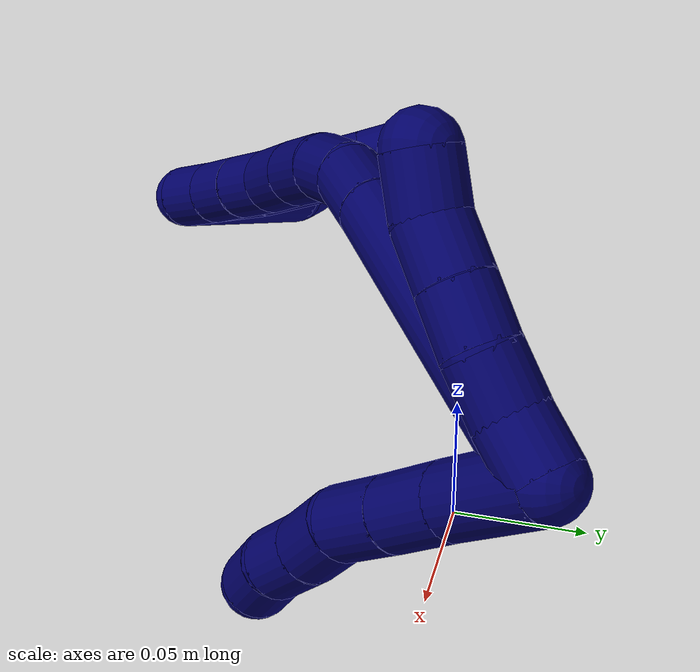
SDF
<sdf version="1.7">
 <world name="default">
  <model name="7">
   <static>0</static>
   <link name="7">
    <collision name="collision-cylinder-e_1_2_8">
     <pose>0.004969 -0.003011 0.018604 0.160482 0.257811 0.020846</pose>
     <geometry><cylinder><radius>0.0125</radius><length>0.03898</length></cylinder></geometry>
     <surface>
      <friction><ode><mu>1.16</mu><mu2>1.16</mu2><slip1>0</slip1><slip2>0</slip2></ode></friction>
      <contact><ode><kp>1e+06</kp><kd>1</kd><max_vel>0</max_vel><min_depth>0.001</min_depth></ode></contact>
     </surface>
    </collision>
    <visual name="visual-cylinder-e_1_2_8">
     <pose>0.004969 -0.003011 0.018604 0.160482 0.257811 0.020846</pose>
     <geometry><cylinder><radius>0.0125</radius><length>0.03898</length></cylinder></geometry>
     <material><ambient>0.003922 0 0.403922 1</ambient></material>
    </visual>
    <collision name="collision-cylinder-e_2_8_9">
     <pose>0.013558 -0.007139 0.04888 0.095342 0.299377 0.01439</pose>
     <geometry><cylinder><radius>0.0125</radius><length>0.024544</length></cylinder></geometry>
     <surface>
      <friction><ode><mu>1.16</mu><mu2>1.16</mu2><slip1>0</slip1><slip2>0</slip2></ode></friction>
      <contact><ode><kp>1e+06</kp><kd>1</kd><max_vel>0</max_vel><min_depth>0.001</min_depth></ode></contact>
     </surface>
    </collision>
    <visual name="visual-cylinder-e_2_8_9">
     <pose>0.013558 -0.007139 0.04888 0.095342 0.299377 0.01439</pose>
     <geometry><cylinder><radius>0.0125</radius><length>0.024544</length></cylinder></geometry>
     <material><ambient>0.003922 0 0.403922 1</ambient></material>
    </visual>
    <collision name="collision-cylinder-e_3_9_10">
     <pose>0.02044 -0.009566 0.07215 0.112563 0.272632 0.015456</pose>
     <geometry><cylinder><radius>0.0125</radius><length>0.024237</length></cylinder></geometry>
     <surface>
      <friction><ode><mu>1.16</mu><mu2>1.16</mu2><slip1>0</slip1><slip2>0</slip2></ode></friction>
      <contact><ode><kp>1e+06</kp><kd>1</kd><max_vel>0</max_vel><min_depth>0.001</min_depth></ode></contact>
     </surface>
    </collision>
    <visual name="visual-cylinder-e_3_9_10">
     <pose>0.02044 -0.009566 0.07215 0.112563 0.272632 0.015456</pose>
     <geometry><cylinder><radius>0.0125</radius><length>0.024237</length></cylinder></geometry>
     <material><ambient>0.003922 0 0.403922 1</ambient></material>
    </visual>
    <collision name="collision-cylinder-e_4_10_11">
     <pose>0.028753 -0.013871 0.092891 0.316395 0.483333 0.078603</pose>
     <geometry><cylinder><radius>0.0125</radius><length>0.021732</length></cylinder></geometry>
     <surface>
      <friction><ode><mu>1.16</mu><mu2>1.16</mu2><slip1>0</slip1><slip2>0</slip2></ode></friction>
      <contact><ode><kp>1e+06</kp><kd>1</kd><max_vel>0</max_vel><min_depth>0.001</min_depth></ode></contact>
     </surface>
    </collision>
    <visual name="visual-cylinder-e_4_10_11">
     <pose>0.028753 -0.013871 0.092891 0.316395 0.483333 0.078603</pose>
     <geometry><cylinder><radius>0.0125</radius><length>0.021732</length></cylinder></geometry>
     <material><ambient>0.003922 0 0.403922 1</ambient></material>
    </visual>
    <collision name="collision-cylinder-e_5_11_12">
     <pose>0.037897 -0.01879 0.111024 0.210983 0.418961 0.045014</pose>
     <geometry><cylinder><radius>0.0125</radius><length>0.020127</length></cylinder></geometry>
     <surface>
      <friction><ode><mu>1.16</mu><mu2>1.16</mu2><slip1>0</slip1><slip2>0</slip2></ode></friction>
      <contact><ode><kp>1e+06</kp><kd>1</kd><max_vel>0</max_vel><min_depth>0.001</min_depth></ode></contact>
     </surface>
    </collision>
    <visual name="visual-cylinder-e_5_11_12">
     <pose>0.037897 -0.01879 0.111024 0.210983 0.418961 0.045014</pose>
     <geometry><cylinder><radius>0.0125</radius><length>0.020127</length></cylinder></geometry>
     <material><ambient>0.003922 0 0.403922 1</ambient></material>
    </visual>
    <collision name="collision-cylinder-e_6_12_6">
     <pose>0.046546 -0.024834 0.128145 0.468856 0.463415 0.112577</pose>
     <geometry><cylinder><radius>0.0125</radius><length>0.02038</length></cylinder></geometry>
     <surface>
      <friction><ode><mu>1.16</mu><mu2>1.16</mu2><slip1>0</slip1><slip2>0</slip2></ode></friction>
      <contact><ode><kp>1e+06</kp><kd>1</kd><max_vel>0</max_vel><min_depth>0.001</min_depth></ode></contact>
     </surface>
    </collision>
    <visual name="visual-cylinder-e_6_12_6">
     <pose>0.046546 -0.024834 0.128145 0.468856 0.463415 0.112577</pose>
     <geometry><cylinder><radius>0.0125</radius><length>0.02038</length></cylinder></geometry>
     <material><ambient>0.003922 0 0.403922 1</ambient></material>
    </visual>
    <collision name="collision-cylinder-e_1_2_13">
     <pose>-0.007829 0.002141 0.005841 -0.351278 -0.899327 0.170889</pose>
     <geometry><cylinder><radius>0.0125</radius><length>0.02</length></cylinder></geometry>
     <surface>
      <friction><ode><mu>1.16</mu><mu2>1.16</mu2><slip1>0</slip1><slip2>0</slip2></ode></friction>
      <contact><ode><kp>1e+06</kp><kd>1</kd><max_vel>0</max_vel><min_depth>0.001</min_depth></ode></contact>
     </surface>
    </collision>
    <visual name="visual-cylinder-e_1_2_13">
     <pose>-0.007829 0.002141 0.005841 -0.351278 -0.899327 0.170889</pose>
     <geometry><cylinder><radius>0.0125</radius><length>0.02</length></cylinder></geometry>
     <material><ambient>0.003922 0 0.403922 1</ambient></material>
    </visual>
    <collision name="collision-cylinder-e_2_13_14">
     <pose>-0.02403 0.008042 0.015654 -0.758245 -0.992101 0.424711</pose>
     <geometry><cylinder><radius>0.0125</radius><length>0.02</length></cylinder></geometry>
     <surface>
      <friction><ode><mu>1.16</mu><mu2>1.16</mu2><slip1>0</slip1><slip2>0</slip2></ode></friction>
      <contact><ode><kp>1e+06</kp><kd>1</kd><max_vel>0</max_vel><min_depth>0.001</min_depth></ode></contact>
     </surface>
    </collision>
    <visual name="visual-cylinder-e_2_13_14">
     <pose>-0.02403 0.008042 0.015654 -0.758245 -0.992101 0.424711</pose>
     <geometry><cylinder><radius>0.0125</radius><length>0.02</length></cylinder></geometry>
     <material><ambient>0.003922 0 0.403922 1</ambient></material>
    </visual>
    <collision name="collision-cylinder-e_3_14_15">
     <pose>-0.041084 0.014154 0.023994 -0.493575 -1.05163 0.290328</pose>
     <geometry><cylinder><radius>0.0125</radius><length>0.02</length></cylinder></geometry>
     <surface>
      <friction><ode><mu>1.16</mu><mu2>1.16</mu2><slip1>0</slip1><slip2>0</slip2></ode></friction>
      <contact><ode><kp>1e+06</kp><kd>1</kd><max_vel>0</max_vel><min_depth>0.001</min_depth></ode></contact>
     </surface>
    </collision>
    <visual name="visual-cylinder-e_3_14_15">
     <pose>-0.041084 0.014154 0.023994 -0.493575 -1.05163 0.290328</pose>
     <geometry><cylinder><radius>0.0125</radius><length>0.02</length></cylinder></geometry>
     <material><ambient>0.003922 0 0.403922 1</ambient></material>
    </visual>
    <collision name="collision-cylinder-e_4_15_16">
     <pose>-0.058403 0.018564 0.032965 -0.420758 -1.04241 0.243994</pose>
     <geometry><cylinder><radius>0.0125</radius><length>0.02</length></cylinder></geometry>
     <surface>
      <friction><ode><mu>1.16</mu><mu2>1.16</mu2><slip1>0</slip1><slip2>0</slip2></ode></friction>
      <contact><ode><kp>1e+06</kp><kd>1</kd><max_vel>0</max_vel><min_depth>0.001</min_depth></ode></contact>
     </surface>
    </collision>
    <visual name="visual-cylinder-e_4_15_16">
     <pose>-0.058403 0.018564 0.032965 -0.420758 -1.04241 0.243994</pose>
     <geometry><cylinder><radius>0.0125</radius><length>0.02</length></cylinder></geometry>
     <material><ambient>0.003922 0 0.403922 1</ambient></material>
    </visual>
    <collision name="collision-cylinder-e_5_16_5">
     <pose>-0.076549 0.023305 0.039106 -1.04975 -1.2564 0.796276</pose>
     <geometry><cylinder><radius>0.0125</radius><length>0.02</length></cylinder></geometry>
     <surface>
      <friction><ode><mu>1.16</mu><mu2>1.16</mu2><slip1>0</slip1><slip2>0</slip2></ode></friction>
      <contact><ode><kp>1e+06</kp><kd>1</kd><max_vel>0</max_vel><min_depth>0.001</min_depth></ode></contact>
     </surface>
    </collision>
    <visual name="visual-cylinder-e_5_16_5">
     <pose>-0.076549 0.023305 0.039106 -1.04975 -1.2564 0.796276</pose>
     <geometry><cylinder><radius>0.0125</radius><length>0.02</length></cylinder></geometry>
     <material><ambient>0.003922 0 0.403922 1</ambient></material>
    </visual>
    <collision name="collision-cylinder-e_1_2_17">
     <pose>-0.039901 -0.016019 0.055948 0.278866 -0.601012 -0.086927</pose>
     <geometry><cylinder><radius>0.0125</radius><length>0.141122</length></cylinder></geometry>
     <surface>
      <friction><ode><mu>1.16</mu><mu2>1.16</mu2><slip1>0</slip1><slip2>0</slip2></ode></friction>
      <contact><ode><kp>1e+06</kp><kd>1</kd><max_vel>0</max_vel><min_depth>0.001</min_depth></ode></contact>
     </surface>
    </collision>
    <visual name="visual-cylinder-e_1_2_17">
     <pose>-0.039901 -0.016019 0.055948 0.278866 -0.601012 -0.086927</pose>
     <geometry><cylinder><radius>0.0125</radius><length>0.141122</length></cylinder></geometry>
     <material><ambient>0.003922 0 0.403922 1</ambient></material>
    </visual>
    <collision name="collision-cylinder-e_2_17_18">
     <pose>-0.086555 -0.035508 0.122573 0.314144 -0.541584 -0.087877</pose>
     <geometry><cylinder><radius>0.0125</radius><length>0.026202</length></cylinder></geometry>
     <surface>
      <friction><ode><mu>1.16</mu><mu2>1.16</mu2><slip1>0</slip1><slip2>0</slip2></ode></friction>
      <contact><ode><kp>1e+06</kp><kd>1</kd><max_vel>0</max_vel><min_depth>0.001</min_depth></ode></contact>
     </surface>
    </collision>
    <visual name="visual-cylinder-e_2_17_18">
     <pose>-0.086555 -0.035508 0.122573 0.314144 -0.541584 -0.087877</pose>
     <geometry><cylinder><radius>0.0125</radius><length>0.026202</length></cylinder></geometry>
     <material><ambient>0.003922 0 0.403922 1</ambient></material>
    </visual>
    <collision name="collision-cylinder-e_3_18_19">
     <pose>-0.095789 -0.041801 0.143362 0.272352 -0.231972 -0.031926</pose>
     <geometry><cylinder><radius>0.0125</radius><length>0.021577</length></cylinder></geometry>
     <surface>
      <friction><ode><mu>1.16</mu><mu2>1.16</mu2><slip1>0</slip1><slip2>0</slip2></ode></friction>
      <contact><ode><kp>1e+06</kp><kd>1</kd><max_vel>0</max_vel><min_depth>0.001</min_depth></ode></contact>
     </surface>
    </collision>
    <visual name="visual-cylinder-e_3_18_19">
     <pose>-0.095789 -0.041801 0.143362 0.272352 -0.231972 -0.031926</pose>
     <geometry><cylinder><radius>0.0125</radius><length>0.021577</length></cylinder></geometry>
     <material><ambient>0.003922 0 0.403922 1</ambient></material>
    </visual>
    <collision name="collision-cylinder-e_4_19_20">
     <pose>-0.098088 -0.048843 0.164712 0.35907 0.01507 0.002735</pose>
     <geometry><cylinder><radius>0.0125</radius><length>0.024009</length></cylinder></geometry>
     <surface>
      <friction><ode><mu>1.16</mu><mu2>1.16</mu2><slip1>0</slip1><slip2>0</slip2></ode></friction>
      <contact><ode><kp>1e+06</kp><kd>1</kd><max_vel>0</max_vel><min_depth>0.001</min_depth></ode></contact>
     </surface>
    </collision>
    <visual name="visual-cylinder-e_4_19_20">
     <pose>-0.098088 -0.048843 0.164712 0.35907 0.01507 0.002735</pose>
     <geometry><cylinder><radius>0.0125</radius><length>0.024009</length></cylinder></geometry>
     <material><ambient>0.003922 0 0.403922 1</ambient></material>
    </visual>
    <collision name="collision-cylinder-e_5_20_21">
     <pose>-0.097399 -0.05769 0.188001 0.366697 0.039321 0.007292</pose>
     <geometry><cylinder><radius>0.0125</radius><length>0.025838</length></cylinder></geometry>
     <surface>
      <friction><ode><mu>1.16</mu><mu2>1.16</mu2><slip1>0</slip1><slip2>0</slip2></ode></friction>
      <contact><ode><kp>1e+06</kp><kd>1</kd><max_vel>0</max_vel><min_depth>0.001</min_depth></ode></contact>
     </surface>
    </collision>
    <visual name="visual-cylinder-e_5_20_21">
     <pose>-0.097399 -0.05769 0.188001 0.366697 0.039321 0.007292</pose>
     <geometry><cylinder><radius>0.0125</radius><length>0.025838</length></cylinder></geometry>
     <material><ambient>0.003922 0 0.403922 1</ambient></material>
    </visual>
    <collision name="collision-cylinder-e_6_21_22">
     <pose>-0.095916 -0.063447 0.20999 0.11311 0.097171 0.005506</pose>
     <geometry><cylinder><radius>0.0125</radius><length>0.0201</length></cylinder></geometry>
     <surface>
      <friction><ode><mu>1.16</mu><mu2>1.16</mu2><slip1>0</slip1><slip2>0</slip2></ode></friction>
      <contact><ode><kp>1e+06</kp><kd>1</kd><max_vel>0</max_vel><min_depth>0.001</min_depth></ode></contact>
     </surface>
    </collision>
    <visual name="visual-cylinder-e_6_21_22">
     <pose>-0.095916 -0.063447 0.20999 0.11311 0.097171 0.005506</pose>
     <geometry><cylinder><radius>0.0125</radius><length>0.0201</length></cylinder></geometry>
     <material><ambient>0.003922 0 0.403922 1</ambient></material>
    </visual>
    <collision name="collision-cylinder-e_7_22_23">
     <pose>-0.094063 -0.066186 0.229968 0.159023 0.086171 0.00687</pose>
     <geometry><cylinder><radius>0.0125</radius><length>0.020411</length></cylinder></geometry>
     <surface>
      <friction><ode><mu>1.16</mu><mu2>1.16</mu2><slip1>0</slip1><slip2>0</slip2></ode></friction>
      <contact><ode><kp>1e+06</kp><kd>1</kd><max_vel>0</max_vel><min_depth>0.001</min_depth></ode></contact>
     </surface>
    </collision>
    <visual name="visual-cylinder-e_7_22_23">
     <pose>-0.094063 -0.066186 0.229968 0.159023 0.086171 0.00687</pose>
     <geometry><cylinder><radius>0.0125</radius><length>0.020411</length></cylinder></geometry>
     <material><ambient>0.003922 0 0.403922 1</ambient></material>
    </visual>
    <collision name="collision-cylinder-e_8_23_1">
     <pose>-0.09238 -0.068654 0.250311 0.083069 0.077718 0.003231</pose>
     <geometry><cylinder><radius>0.0125</radius><length>0.02074</length></cylinder></geometry>
     <surface>
      <friction><ode><mu>1.16</mu><mu2>1.16</mu2><slip1>0</slip1><slip2>0</slip2></ode></friction>
      <contact><ode><kp>1e+06</kp><kd>1</kd><max_vel>0</max_vel><min_depth>0.001</min_depth></ode></contact>
     </surface>
    </collision>
    <visual name="visual-cylinder-e_8_23_1">
     <pose>-0.09238 -0.068654 0.250311 0.083069 0.077718 0.003231</pose>
     <geometry><cylinder><radius>0.0125</radius><length>0.02074</length></cylinder></geometry>
     <material><ambient>0.003922 0 0.403922 1</ambient></material>
    </visual>
    <collision name="collision-cylinder-e_1_1_24">
     <pose>-0.10026 -0.107354 0.267972 1.37877 -0.22159 -0.182897</pose>
     <geometry><cylinder><radius>0.0125</radius><length>0.079034</length></cylinder></geometry>
     <surface>
      <friction><ode><mu>1.16</mu><mu2>1.16</mu2><slip1>0</slip1><slip2>0</slip2></ode></friction>
      <contact><ode><kp>1e+06</kp><kd>1</kd><max_vel>0</max_vel><min_depth>0.001</min_depth></ode></contact>
     </surface>
    </collision>
    <visual name="visual-cylinder-e_1_1_24">
     <pose>-0.10026 -0.107354 0.267972 1.37877 -0.22159 -0.182897</pose>
     <geometry><cylinder><radius>0.0125</radius><length>0.079034</length></cylinder></geometry>
     <material><ambient>0.003922 0 0.403922 1</ambient></material>
    </visual>
    <collision name="collision-cylinder-e_2_24_4">
     <pose>-0.112693 -0.153881 0.279848 1.09102 -0.365672 -0.223512</pose>
     <geometry><cylinder><radius>0.0125</radius><length>0.020966</length></cylinder></geometry>
     <surface>
      <friction><ode><mu>1.16</mu><mu2>1.16</mu2><slip1>0</slip1><slip2>0</slip2></ode></friction>
      <contact><ode><kp>1e+06</kp><kd>1</kd><max_vel>0</max_vel><min_depth>0.001</min_depth></ode></contact>
     </surface>
    </collision>
    <visual name="visual-cylinder-e_2_24_4">
     <pose>-0.112693 -0.153881 0.279848 1.09102 -0.365672 -0.223512</pose>
     <geometry><cylinder><radius>0.0125</radius><length>0.020966</length></cylinder></geometry>
     <material><ambient>0.003922 0 0.403922 1</ambient></material>
    </visual>
    <collision name="collision-cylinder-e_1_1_25">
     <pose>-0.095733 -0.078381 0.247292 2.55423 -0.254205 -0.799595</pose>
     <geometry><cylinder><radius>0.0125</radius><length>0.033072</length></cylinder></geometry>
     <surface>
      <friction><ode><mu>1.16</mu><mu2>1.16</mu2><slip1>0</slip1><slip2>0</slip2></ode></friction>
      <contact><ode><kp>1e+06</kp><kd>1</kd><max_vel>0</max_vel><min_depth>0.001</min_depth></ode></contact>
     </surface>
    </collision>
    <visual name="visual-cylinder-e_1_1_25">
     <pose>-0.095733 -0.078381 0.247292 2.55423 -0.254205 -0.799595</pose>
     <geometry><cylinder><radius>0.0125</radius><length>0.033072</length></cylinder></geometry>
     <material><ambient>0.003922 0 0.403922 1</ambient></material>
    </visual>
    <collision name="collision-cylinder-e_2_25_26">
     <pose>-0.103841 -0.092019 0.223106 2.72798 -0.321403 -1.31564</pose>
     <geometry><cylinder><radius>0.0125</radius><length>0.025009</length></cylinder></geometry>
     <surface>
      <friction><ode><mu>1.16</mu><mu2>1.16</mu2><slip1>0</slip1><slip2>0</slip2></ode></friction>
      <contact><ode><kp>1e+06</kp><kd>1</kd><max_vel>0</max_vel><min_depth>0.001</min_depth></ode></contact>
     </surface>
    </collision>
    <visual name="visual-cylinder-e_2_25_26">
     <pose>-0.103841 -0.092019 0.223106 2.72798 -0.321403 -1.31564</pose>
     <geometry><cylinder><radius>0.0125</radius><length>0.025009</length></cylinder></geometry>
     <material><ambient>0.003922 0 0.403922 1</ambient></material>
    </visual>
    <collision name="collision-cylinder-e_3_26_27">
     <pose>-0.111726 -0.102084 0.204113 2.56406 -0.385247 -1.16194</pose>
     <geometry><cylinder><radius>0.0125</radius><length>0.020941</length></cylinder></geometry>
     <surface>
      <friction><ode><mu>1.16</mu><mu2>1.16</mu2><slip1>0</slip1><slip2>0</slip2></ode></friction>
      <contact><ode><kp>1e+06</kp><kd>1</kd><max_vel>0</max_vel><min_depth>0.001</min_depth></ode></contact>
     </surface>
    </collision>
    <visual name="visual-cylinder-e_3_26_27">
     <pose>-0.111726 -0.102084 0.204113 2.56406 -0.385247 -1.16194</pose>
     <geometry><cylinder><radius>0.0125</radius><length>0.020941</length></cylinder></geometry>
     <material><ambient>0.003922 0 0.403922 1</ambient></material>
    </visual>
    <collision name="collision-cylinder-e_4_27_3">
     <pose>-0.119776 -0.112745 0.187964 2.55217 -0.403128 -1.18497</pose>
     <geometry><cylinder><radius>0.0125</radius><length>0.020979</length></cylinder></geometry>
     <surface>
      <friction><ode><mu>1.16</mu><mu2>1.16</mu2><slip1>0</slip1><slip2>0</slip2></ode></friction>
      <contact><ode><kp>1e+06</kp><kd>1</kd><max_vel>0</max_vel><min_depth>0.001</min_depth></ode></contact>
     </surface>
    </collision>
    <visual name="visual-cylinder-e_4_27_3">
     <pose>-0.119776 -0.112745 0.187964 2.55217 -0.403128 -1.18497</pose>
     <geometry><cylinder><radius>0.0125</radius><length>0.020979</length></cylinder></geometry>
     <material><ambient>0.003922 0 0.403922 1</ambient></material>
    </visual>
    <collision name="collision-sphere-3">
     <pose>-0.123891 -0.118109 0.179943 0 -0 0</pose>
     <geometry><sphere><radius>0.0125</radius></sphere></geometry>
     <surface>
      <friction><ode><mu>1.16</mu><mu2>1.16</mu2><slip1>0</slip1><slip2>0</slip2></ode></friction>
      <contact><ode><kp>1e+06</kp><kd>1</kd><max_vel>0</max_vel><min_depth>0.001</min_depth></ode></contact>
     </surface>
    </collision>
    <visual name="visual-sphere-3">
     <pose>-0.123891 -0.118109 0.179943 0 -0 0</pose>
     <geometry><sphere><radius>0.0125</radius></sphere></geometry>
     <material><ambient>0.003922 0 0.403922 1</ambient></material>
    </visual>
    <collision name="collision-sphere-27">
     <pose>-0.115661 -0.107382 0.195984 0 -0 0</pose>
     <geometry><sphere><radius>0.0125</radius></sphere></geometry>
     <surface>
      <friction><ode><mu>1.16</mu><mu2>1.16</mu2><slip1>0</slip1><slip2>0</slip2></ode></friction>
      <contact><ode><kp>1e+06</kp><kd>1</kd><max_vel>0</max_vel><min_depth>0.001</min_depth></ode></contact>
     </surface>
    </collision>
    <visual name="visual-sphere-27">
     <pose>-0.115661 -0.107382 0.195984 0 -0 0</pose>
     <geometry><sphere><radius>0.0125</radius></sphere></geometry>
     <material><ambient>0.003922 0 0.403922 1</ambient></material>
    </visual>
    <collision name="collision-sphere-26">
     <pose>-0.107791 -0.096787 0.212243 0 -0 0</pose>
     <geometry><sphere><radius>0.0125</radius></sphere></geometry>
     <surface>
      <friction><ode><mu>1.16</mu><mu2>1.16</mu2><slip1>0</slip1><slip2>0</slip2></ode></friction>
      <contact><ode><kp>1e+06</kp><kd>1</kd><max_vel>0</max_vel><min_depth>0.001</min_depth></ode></contact>
     </surface>
    </collision>
    <visual name="visual-sphere-26">
     <pose>-0.107791 -0.096787 0.212243 0 -0 0</pose>
     <geometry><sphere><radius>0.0125</radius></sphere></geometry>
     <material><ambient>0.003922 0 0.403922 1</ambient></material>
    </visual>
    <collision name="collision-sphere-25">
     <pose>-0.099891 -0.08725 0.23397 0 -0 0</pose>
     <geometry><sphere><radius>0.0125</radius></sphere></geometry>
     <surface>
      <friction><ode><mu>1.16</mu><mu2>1.16</mu2><slip1>0</slip1><slip2>0</slip2></ode></friction>
      <contact><ode><kp>1e+06</kp><kd>1</kd><max_vel>0</max_vel><min_depth>0.001</min_depth></ode></contact>
     </surface>
    </collision>
    <visual name="visual-sphere-25">
     <pose>-0.099891 -0.08725 0.23397 0 -0 0</pose>
     <geometry><sphere><radius>0.0125</radius></sphere></geometry>
     <material><ambient>0.003922 0 0.403922 1</ambient></material>
    </visual>
    <collision name="collision-sphere-4">
     <pose>-0.116442 -0.162565 0.284367 0 -0 0</pose>
     <geometry><sphere><radius>0.0125</radius></sphere></geometry>
     <surface>
      <friction><ode><mu>1.16</mu><mu2>1.16</mu2><slip1>0</slip1><slip2>0</slip2></ode></friction>
      <contact><ode><kp>1e+06</kp><kd>1</kd><max_vel>0</max_vel><min_depth>0.001</min_depth></ode></contact>
     </surface>
    </collision>
    <visual name="visual-sphere-4">
     <pose>-0.116442 -0.162565 0.284367 0 -0 0</pose>
     <geometry><sphere><radius>0.0125</radius></sphere></geometry>
     <material><ambient>0.003922 0 0.403922 1</ambient></material>
    </visual>
    <collision name="collision-sphere-24">
     <pose>-0.108945 -0.145197 0.275329 0 -0 0</pose>
     <geometry><sphere><radius>0.0125</radius></sphere></geometry>
     <surface>
      <friction><ode><mu>1.16</mu><mu2>1.16</mu2><slip1>0</slip1><slip2>0</slip2></ode></friction>
      <contact><ode><kp>1e+06</kp><kd>1</kd><max_vel>0</max_vel><min_depth>0.001</min_depth></ode></contact>
     </surface>
    </collision>
    <visual name="visual-sphere-24">
     <pose>-0.108945 -0.145197 0.275329 0 -0 0</pose>
     <geometry><sphere><radius>0.0125</radius></sphere></geometry>
     <material><ambient>0.003922 0 0.403922 1</ambient></material>
    </visual>
    <collision name="collision-sphere-1">
     <pose>-0.091574 -0.069512 0.260614 0 -0 0</pose>
     <geometry><sphere><radius>0.0125</radius></sphere></geometry>
     <surface>
      <friction><ode><mu>1.16</mu><mu2>1.16</mu2><slip1>0</slip1><slip2>0</slip2></ode></friction>
      <contact><ode><kp>1e+06</kp><kd>1</kd><max_vel>0</max_vel><min_depth>0.001</min_depth></ode></contact>
     </surface>
    </collision>
    <visual name="visual-sphere-1">
     <pose>-0.091574 -0.069512 0.260614 0 -0 0</pose>
     <geometry><sphere><radius>0.0125</radius></sphere></geometry>
     <material><ambient>0.003922 0 0.403922 1</ambient></material>
    </visual>
    <collision name="collision-sphere-23">
     <pose>-0.093185 -0.067796 0.240008 0 -0 0</pose>
     <geometry><sphere><radius>0.0125</radius></sphere></geometry>
     <surface>
      <friction><ode><mu>1.16</mu><mu2>1.16</mu2><slip1>0</slip1><slip2>0</slip2></ode></friction>
      <contact><ode><kp>1e+06</kp><kd>1</kd><max_vel>0</max_vel><min_depth>0.001</min_depth></ode></contact>
     </surface>
    </collision>
    <visual name="visual-sphere-23">
     <pose>-0.093185 -0.067796 0.240008 0 -0 0</pose>
     <geometry><sphere><radius>0.0125</radius></sphere></geometry>
     <material><ambient>0.003922 0 0.403922 1</ambient></material>
    </visual>
    <collision name="collision-sphere-22">
     <pose>-0.094941 -0.064576 0.219929 0 -0 0</pose>
     <geometry><sphere><radius>0.0125</radius></sphere></geometry>
     <surface>
      <friction><ode><mu>1.16</mu><mu2>1.16</mu2><slip1>0</slip1><slip2>0</slip2></ode></friction>
      <contact><ode><kp>1e+06</kp><kd>1</kd><max_vel>0</max_vel><min_depth>0.001</min_depth></ode></contact>
     </surface>
    </collision>
    <visual name="visual-sphere-22">
     <pose>-0.094941 -0.064576 0.219929 0 -0 0</pose>
     <geometry><sphere><radius>0.0125</radius></sphere></geometry>
     <material><ambient>0.003922 0 0.403922 1</ambient></material>
    </visual>
    <collision name="collision-sphere-21">
     <pose>-0.096891 -0.062318 0.200052 0 -0 0</pose>
     <geometry><sphere><radius>0.0125</radius></sphere></geometry>
     <surface>
      <friction><ode><mu>1.16</mu><mu2>1.16</mu2><slip1>0</slip1><slip2>0</slip2></ode></friction>
      <contact><ode><kp>1e+06</kp><kd>1</kd><max_vel>0</max_vel><min_depth>0.001</min_depth></ode></contact>
     </surface>
    </collision>
    <visual name="visual-sphere-21">
     <pose>-0.096891 -0.062318 0.200052 0 -0 0</pose>
     <geometry><sphere><radius>0.0125</radius></sphere></geometry>
     <material><ambient>0.003922 0 0.403922 1</ambient></material>
    </visual>
    <collision name="collision-sphere-12">
     <pose>0.041991 -0.020715 0.120013 0 -0 0</pose>
     <geometry><sphere><radius>0.0125</radius></sphere></geometry>
     <surface>
      <friction><ode><mu>1.16</mu><mu2>1.16</mu2><slip1>0</slip1><slip2>0</slip2></ode></friction>
      <contact><ode><kp>1e+06</kp><kd>1</kd><max_vel>0</max_vel><min_depth>0.001</min_depth></ode></contact>
     </surface>
    </collision>
    <visual name="visual-sphere-12">
     <pose>0.041991 -0.020715 0.120013 0 -0 0</pose>
     <geometry><sphere><radius>0.0125</radius></sphere></geometry>
     <material><ambient>0.003922 0 0.403922 1</ambient></material>
    </visual>
    <collision name="collision-sphere-11">
     <pose>0.033803 -0.016865 0.102035 0 -0 0</pose>
     <geometry><sphere><radius>0.0125</radius></sphere></geometry>
     <surface>
      <friction><ode><mu>1.16</mu><mu2>1.16</mu2><slip1>0</slip1><slip2>0</slip2></ode></friction>
      <contact><ode><kp>1e+06</kp><kd>1</kd><max_vel>0</max_vel><min_depth>0.001</min_depth></ode></contact>
     </surface>
    </collision>
    <visual name="visual-sphere-11">
     <pose>0.033803 -0.016865 0.102035 0 -0 0</pose>
     <geometry><sphere><radius>0.0125</radius></sphere></geometry>
     <material><ambient>0.003922 0 0.403922 1</ambient></material>
    </visual>
    <collision name="collision-sphere-10">
     <pose>0.023703 -0.010877 0.083747 0 -0 0</pose>
     <geometry><sphere><radius>0.0125</radius></sphere></geometry>
     <surface>
      <friction><ode><mu>1.16</mu><mu2>1.16</mu2><slip1>0</slip1><slip2>0</slip2></ode></friction>
      <contact><ode><kp>1e+06</kp><kd>1</kd><max_vel>0</max_vel><min_depth>0.001</min_depth></ode></contact>
     </surface>
    </collision>
    <visual name="visual-sphere-10">
     <pose>0.023703 -0.010877 0.083747 0 -0 0</pose>
     <geometry><sphere><radius>0.0125</radius></sphere></geometry>
     <material><ambient>0.003922 0 0.403922 1</ambient></material>
    </visual>
    <collision name="collision-sphere-9">
     <pose>0.017177 -0.008256 0.060553 0 -0 0</pose>
     <geometry><sphere><radius>0.0125</radius></sphere></geometry>
     <surface>
      <friction><ode><mu>1.16</mu><mu2>1.16</mu2><slip1>0</slip1><slip2>0</slip2></ode></friction>
      <contact><ode><kp>1e+06</kp><kd>1</kd><max_vel>0</max_vel><min_depth>0.001</min_depth></ode></contact>
     </surface>
    </collision>
    <visual name="visual-sphere-9">
     <pose>0.017177 -0.008256 0.060553 0 -0 0</pose>
     <geometry><sphere><radius>0.0125</radius></sphere></geometry>
     <material><ambient>0.003922 0 0.403922 1</ambient></material>
    </visual>
    <collision name="collision-sphere-2">
     <geometry><sphere><radius>0.0125</radius></sphere></geometry>
     <surface>
      <friction><ode><mu>1.16</mu><mu2>1.16</mu2><slip1>0</slip1><slip2>0</slip2></ode></friction>
      <contact><ode><kp>1e+06</kp><kd>1</kd><max_vel>0</max_vel><min_depth>0.001</min_depth></ode></contact>
     </surface>
    </collision>
    <visual name="visual-sphere-2">
     <geometry><sphere><radius>0.0125</radius></sphere></geometry>
     <material><ambient>0.003922 0 0.403922 1</ambient></material>
    </visual>
    <collision name="collision-sphere-19">
     <pose>-0.098269 -0.044625 0.153475 0 -0 0</pose>
     <geometry><sphere><radius>0.0125</radius></sphere></geometry>
     <surface>
      <friction><ode><mu>1.16</mu><mu2>1.16</mu2><slip1>0</slip1><slip2>0</slip2></ode></friction>
      <contact><ode><kp>1e+06</kp><kd>1</kd><max_vel>0</max_vel><min_depth>0.001</min_depth></ode></contact>
     </surface>
    </collision>
    <visual name="visual-sphere-19">
     <pose>-0.098269 -0.044625 0.153475 0 -0 0</pose>
     <geometry><sphere><radius>0.0125</radius></sphere></geometry>
     <material><ambient>0.003922 0 0.403922 1</ambient></material>
    </visual>
    <collision name="collision-sphere-8">
     <pose>0.009939 -0.006023 0.037208 0 -0 0</pose>
     <geometry><sphere><radius>0.0125</radius></sphere></geometry>
     <surface>
      <friction><ode><mu>1.16</mu><mu2>1.16</mu2><slip1>0</slip1><slip2>0</slip2></ode></friction>
      <contact><ode><kp>1e+06</kp><kd>1</kd><max_vel>0</max_vel><min_depth>0.001</min_depth></ode></contact>
     </surface>
    </collision>
    <visual name="visual-sphere-8">
     <pose>0.009939 -0.006023 0.037208 0 -0 0</pose>
     <geometry><sphere><radius>0.0125</radius></sphere></geometry>
     <material><ambient>0.003922 0 0.403922 1</ambient></material>
    </visual>
    <collision name="collision-sphere-6">
     <pose>0.051101 -0.028953 0.136277 0 -0 0</pose>
     <geometry><sphere><radius>0.0125</radius></sphere></geometry>
     <surface>
      <friction><ode><mu>1.16</mu><mu2>1.16</mu2><slip1>0</slip1><slip2>0</slip2></ode></friction>
      <contact><ode><kp>1e+06</kp><kd>1</kd><max_vel>0</max_vel><min_depth>0.001</min_depth></ode></contact>
     </surface>
    </collision>
    <visual name="visual-sphere-6">
     <pose>0.051101 -0.028953 0.136277 0 -0 0</pose>
     <geometry><sphere><radius>0.0125</radius></sphere></geometry>
     <material><ambient>0.003922 0 0.403922 1</ambient></material>
    </visual>
    <collision name="collision-sphere-13">
     <pose>-0.015658 0.004282 0.011683 0 -0 0</pose>
     <geometry><sphere><radius>0.0125</radius></sphere></geometry>
     <surface>
      <friction><ode><mu>1.16</mu><mu2>1.16</mu2><slip1>0</slip1><slip2>0</slip2></ode></friction>
      <contact><ode><kp>1e+06</kp><kd>1</kd><max_vel>0</max_vel><min_depth>0.001</min_depth></ode></contact>
     </surface>
    </collision>
    <visual name="visual-sphere-13">
     <pose>-0.015658 0.004282 0.011683 0 -0 0</pose>
     <geometry><sphere><radius>0.0125</radius></sphere></geometry>
     <material><ambient>0.003922 0 0.403922 1</ambient></material>
    </visual>
    <collision name="collision-sphere-14">
     <pose>-0.032402 0.011803 0.019625 0 -0 0</pose>
     <geometry><sphere><radius>0.0125</radius></sphere></geometry>
     <surface>
      <friction><ode><mu>1.16</mu><mu2>1.16</mu2><slip1>0</slip1><slip2>0</slip2></ode></friction>
      <contact><ode><kp>1e+06</kp><kd>1</kd><max_vel>0</max_vel><min_depth>0.001</min_depth></ode></contact>
     </surface>
    </collision>
    <visual name="visual-sphere-14">
     <pose>-0.032402 0.011803 0.019625 0 -0 0</pose>
     <geometry><sphere><radius>0.0125</radius></sphere></geometry>
     <material><ambient>0.003922 0 0.403922 1</ambient></material>
    </visual>
    <collision name="collision-sphere-15">
     <pose>-0.049766 0.016505 0.028364 0 -0 0</pose>
     <geometry><sphere><radius>0.0125</radius></sphere></geometry>
     <surface>
      <friction><ode><mu>1.16</mu><mu2>1.16</mu2><slip1>0</slip1><slip2>0</slip2></ode></friction>
      <contact><ode><kp>1e+06</kp><kd>1</kd><max_vel>0</max_vel><min_depth>0.001</min_depth></ode></contact>
     </surface>
    </collision>
    <visual name="visual-sphere-15">
     <pose>-0.049766 0.016505 0.028364 0 -0 0</pose>
     <geometry><sphere><radius>0.0125</radius></sphere></geometry>
     <material><ambient>0.003922 0 0.403922 1</ambient></material>
    </visual>
    <collision name="collision-sphere-16">
     <pose>-0.067039 0.020623 0.037567 0 -0 0</pose>
     <geometry><sphere><radius>0.0125</radius></sphere></geometry>
     <surface>
      <friction><ode><mu>1.16</mu><mu2>1.16</mu2><slip1>0</slip1><slip2>0</slip2></ode></friction>
      <contact><ode><kp>1e+06</kp><kd>1</kd><max_vel>0</max_vel><min_depth>0.001</min_depth></ode></contact>
     </surface>
    </collision>
    <visual name="visual-sphere-16">
     <pose>-0.067039 0.020623 0.037567 0 -0 0</pose>
     <geometry><sphere><radius>0.0125</radius></sphere></geometry>
     <material><ambient>0.003922 0 0.403922 1</ambient></material>
    </visual>
    <collision name="collision-sphere-5">
     <pose>-0.086058 0.025987 0.040646 0 -0 0</pose>
     <geometry><sphere><radius>0.0125</radius></sphere></geometry>
     <surface>
      <friction><ode><mu>1.16</mu><mu2>1.16</mu2><slip1>0</slip1><slip2>0</slip2></ode></friction>
      <contact><ode><kp>1e+06</kp><kd>1</kd><max_vel>0</max_vel><min_depth>0.001</min_depth></ode></contact>
     </surface>
    </collision>
    <visual name="visual-sphere-5">
     <pose>-0.086058 0.025987 0.040646 0 -0 0</pose>
     <geometry><sphere><radius>0.0125</radius></sphere></geometry>
     <material><ambient>0.003922 0 0.403922 1</ambient></material>
    </visual>
    <collision name="collision-sphere-17">
     <pose>-0.079801 -0.032039 0.111896 0 -0 0</pose>
     <geometry><sphere><radius>0.0125</radius></sphere></geometry>
     <surface>
      <friction><ode><mu>1.16</mu><mu2>1.16</mu2><slip1>0</slip1><slip2>0</slip2></ode></friction>
      <contact><ode><kp>1e+06</kp><kd>1</kd><max_vel>0</max_vel><min_depth>0.001</min_depth></ode></contact>
     </surface>
    </collision>
    <visual name="visual-sphere-17">
     <pose>-0.079801 -0.032039 0.111896 0 -0 0</pose>
     <geometry><sphere><radius>0.0125</radius></sphere></geometry>
     <material><ambient>0.003922 0 0.403922 1</ambient></material>
    </visual>
    <collision name="collision-sphere-18">
     <pose>-0.093309 -0.038977 0.13325 0 -0 0</pose>
     <geometry><sphere><radius>0.0125</radius></sphere></geometry>
     <surface>
      <friction><ode><mu>1.16</mu><mu2>1.16</mu2><slip1>0</slip1><slip2>0</slip2></ode></friction>
      <contact><ode><kp>1e+06</kp><kd>1</kd><max_vel>0</max_vel><min_depth>0.001</min_depth></ode></contact>
     </surface>
    </collision>
    <visual name="visual-sphere-18">
     <pose>-0.093309 -0.038977 0.13325 0 -0 0</pose>
     <geometry><sphere><radius>0.0125</radius></sphere></geometry>
     <material><ambient>0.003922 0 0.403922 1</ambient></material>
    </visual>
    <collision name="collision-sphere-20">
     <pose>-0.097907 -0.053061 0.17595 0 -0 0</pose>
     <geometry><sphere><radius>0.0125</radius></sphere></geometry>
     <surface>
      <friction><ode><mu>1.16</mu><mu2>1.16</mu2><slip1>0</slip1><slip2>0</slip2></ode></friction>
      <contact><ode><kp>1e+06</kp><kd>1</kd><max_vel>0</max_vel><min_depth>0.001</min_depth></ode></contact>
     </surface>
    </collision>
    <visual name="visual-sphere-20">
     <pose>-0.097907 -0.053061 0.17595 0 -0 0</pose>
     <geometry><sphere><radius>0.0125</radius></sphere></geometry>
     <material><ambient>0.003922 0 0.403922 1</ambient></material>
    </visual>
    <inertial>
     <pose>-0.056404 -0.043066 0.13204 0 -0 0</pose>
     <mass>0.75</mass>
     <inertia>
      <ixx>0.00023</ixx>
      <ixy>0</ixy>
      <ixz>0</ixz>
      <iyy>0.000227</iyy>
      <iyz>0</iyz>
      <izz>0.000288</izz>
     </inertia>
    </inertial>
   </link>
   <pose>0.113509 0.045228 0.110423 2.12156 0.917299 -0.013172</pose>
  </model>
 </world>
</sdf>
